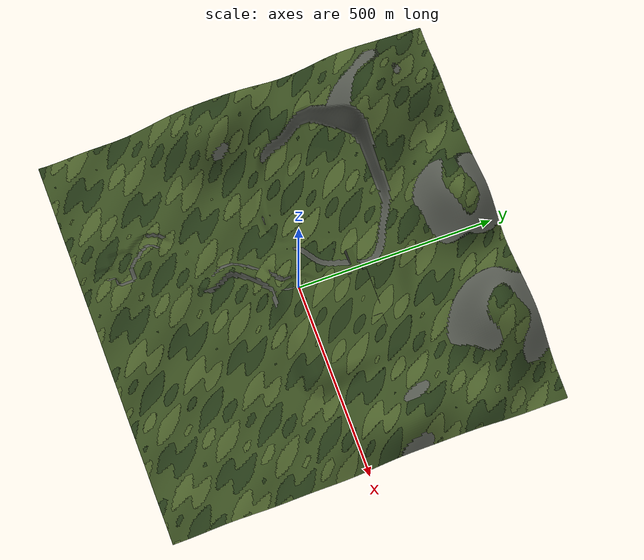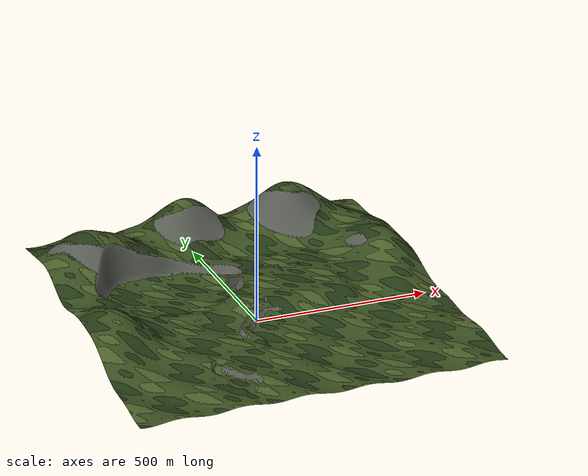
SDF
<?xml version='1.0' encoding='utf-8'?>
<sdf version="1.9">
  <model name="summit_terrain">
    <static>true</static>
    <link name="structure">
      <visual name="visual_grass">
        <geometry>
          <mesh>
            <uri>model://summit_terrain/meshes/visual/grass.dae</uri>
          </mesh>
        </geometry>
        <material>
          <ambient>0.22 0.3 0.12 1</ambient>
          <diffuse>0.22 0.3 0.12 1</diffuse>
          <specular>0.15 0.15 0.15 1</specular>
          <pbr>
            <metal>
              <roughness>0.8</roughness>
              <metalness>0.0</metalness>
            </metal>
          </pbr>
        </material>
      </visual>
      <visual name="visual_grass_light">
        <geometry>
          <mesh>
            <uri>model://summit_terrain/meshes/visual/grass_light.dae</uri>
          </mesh>
        </geometry>
        <material>
          <ambient>0.29 0.37 0.16 1</ambient>
          <diffuse>0.29 0.37 0.16 1</diffuse>
          <specular>0.15 0.15 0.15 1</specular>
          <pbr>
            <metal>
              <roughness>0.8</roughness>
              <metalness>0.0</metalness>
            </metal>
          </pbr>
        </material>
      </visual>
      <visual name="visual_grass_dark">
        <geometry>
          <mesh>
            <uri>model://summit_terrain/meshes/visual/grass_dark.dae</uri>
          </mesh>
        </geometry>
        <material>
          <ambient>0.14 0.22 0.085 1</ambient>
          <diffuse>0.14 0.22 0.085 1</diffuse>
          <specular>0.15 0.15 0.15 1</specular>
          <pbr>
            <metal>
              <roughness>0.8</roughness>
              <metalness>0.0</metalness>
            </metal>
          </pbr>
        </material>
      </visual>
      <visual name="visual_rock">
        <geometry>
          <mesh>
            <uri>model://summit_terrain/meshes/visual/rock.dae</uri>
          </mesh>
        </geometry>
        <material>
          <ambient>0.34 0.355 0.32 1</ambient>
          <diffuse>0.34 0.355 0.32 1</diffuse>
          <specular>0.15 0.15 0.15 1</specular>
          <pbr>
            <metal>
              <roughness>0.8</roughness>
              <metalness>0.0</metalness>
            </metal>
          </pbr>
        </material>
      </visual>
      <collision name="ground_collision">
        <geometry>
          <mesh>
            <uri>model://summit_terrain/meshes/collision/ground_collision.dae</uri>
          </mesh>
        </geometry>
      </collision>
    </link>
  </model>
</sdf>
